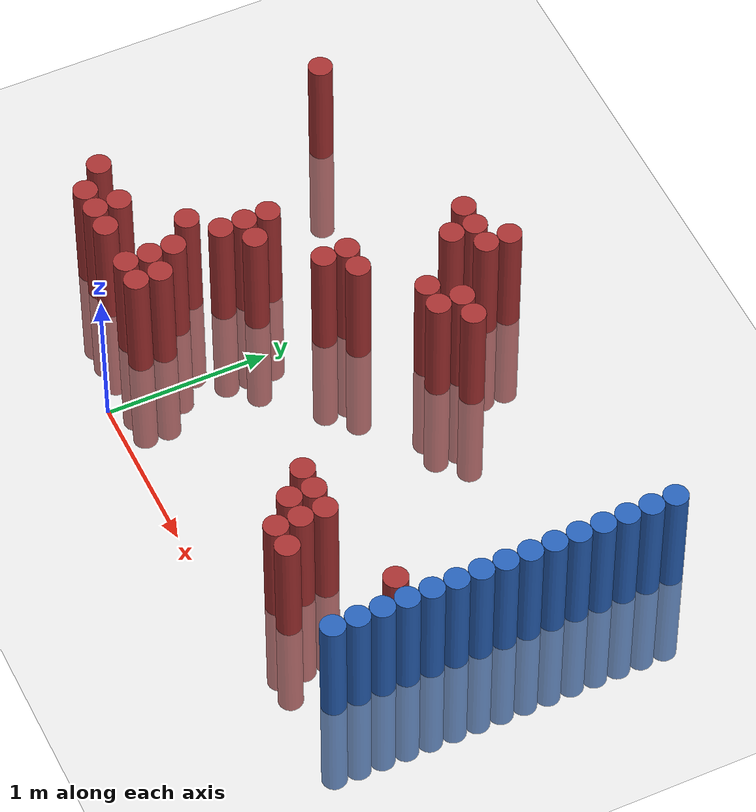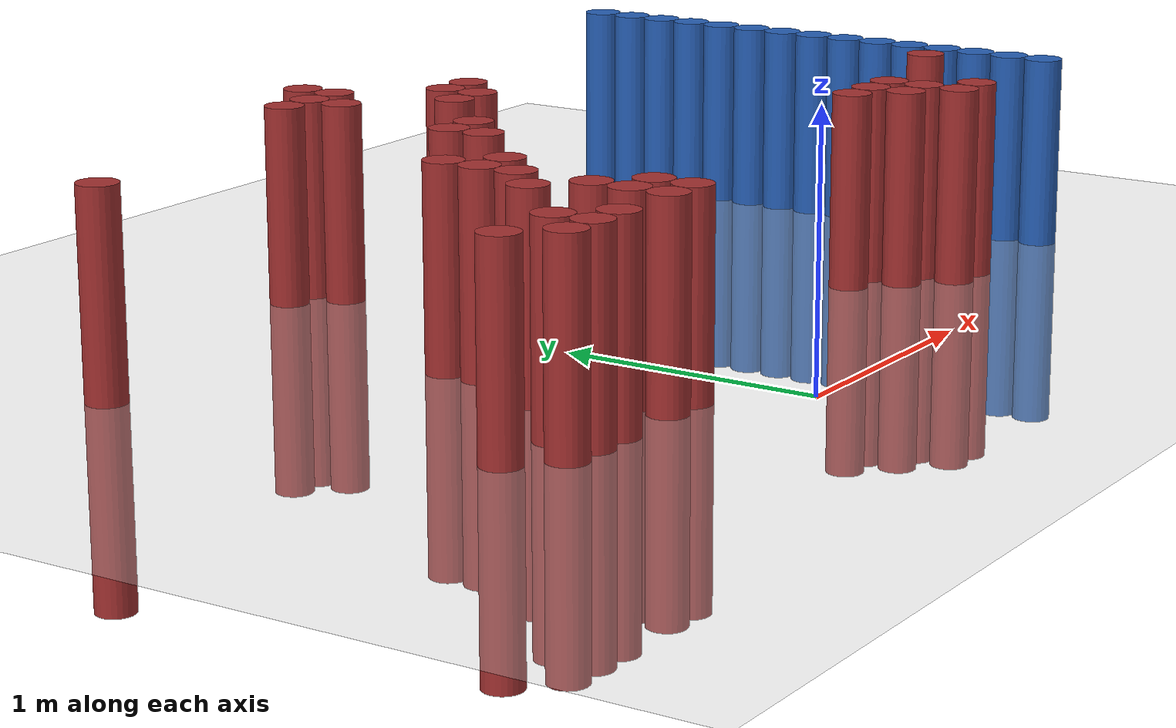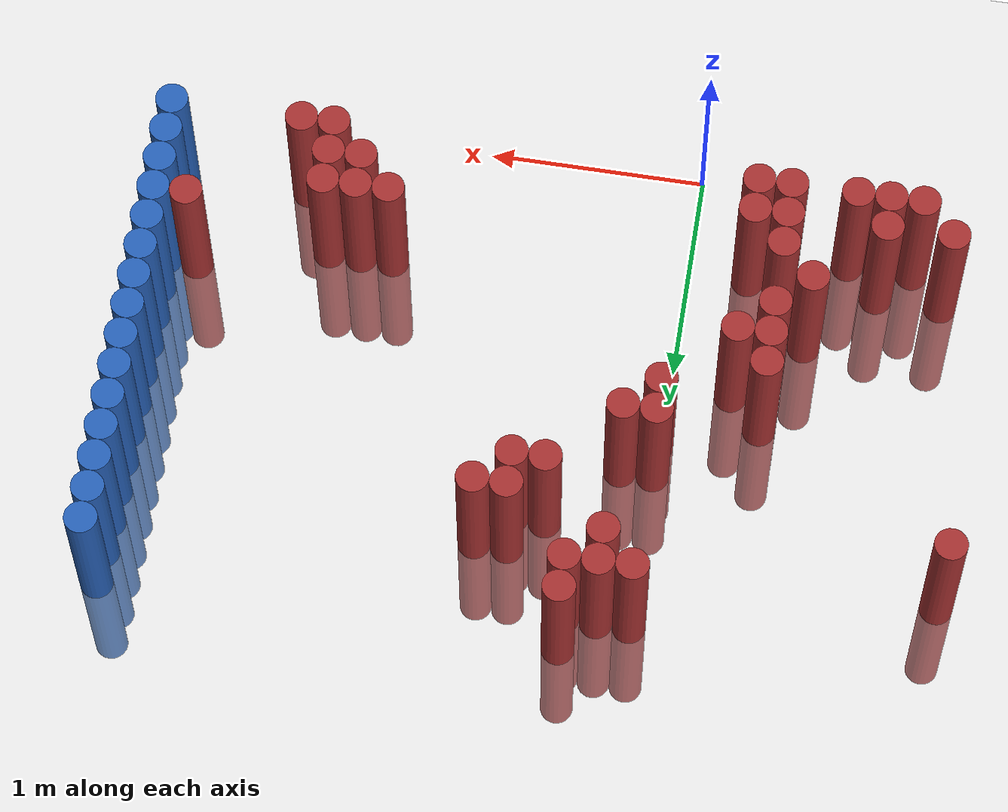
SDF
<sdf version="1.6">
 <world name="default">
  <model name="ground_plane">
   <static>1</static>
   <link name="link">
    <collision name="collision">
     <geometry><plane><normal>0 0 1</normal><size>100 100</size></plane></geometry>
     <surface><friction><ode><mu>100</mu><mu2>50</mu2></ode></friction></surface>
    </collision>
    <visual name="visual">
     <cast_shadows>0</cast_shadows>
     <geometry><plane><normal>0 0 1</normal><size>100 100</size></plane></geometry>
     <material>
      <script><uri>file://media/materials/scripts/gazebo.material</uri><name>Gazebo/Grey</name></script>
     </material>
    </visual>
   </link>
  </model>
  <model name="unit_cylinder_152">
   <static>1</static>
   <pose>-1.325000 1.975000 0.000000 0.000000 0.000000 0.000000</pose>
   <link name="link">
    <inertial>
     <mass>1</mass>
     <inertia><ixx>0.145833</ixx><ixy>0</ixy><ixz>0</ixz><iyy>0.145833</iyy><iyz>0</iyz><izz>0.125</izz></inertia>
    </inertial>
    <collision name="collision">
     <geometry><cylinder><radius>0.075000</radius><length>1.5</length></cylinder></geometry>
    </collision>
    <visual name="visual">
     <geometry><cylinder><radius>0.075000</radius><length>1.5</length></cylinder></geometry>
     <material>
      <ambient>0.648000 0.192000 0.192000 1</ambient>
      <diffuse>0.648000 0.192000 0.192000 1</diffuse>
     </material>
     <material>
      <script><name>Gazebo/Grey</name><uri>file://media/materials/scripts/gazebo.material</uri></script>
     </material>
    </visual>
   </link>
  </model>
  <model name="unit_cylinder_160">
   <static>1</static>
   <pose>-1.175000 0.475000 0.000000 0.000000 0.000000 0.000000</pose>
   <link name="link">
    <inertial>
     <mass>1</mass>
     <inertia><ixx>0.145833</ixx><ixy>0</ixy><ixz>0</ixz><iyy>0.145833</iyy><iyz>0</iyz><izz>0.125</izz></inertia>
    </inertial>
    <collision name="collision">
     <geometry><cylinder><radius>0.075000</radius><length>1.5</length></cylinder></geometry>
    </collision>
    <visual name="visual">
     <geometry><cylinder><radius>0.075000</radius><length>1.5</length></cylinder></geometry>
     <material>
      <ambient>0.648000 0.192000 0.192000 1</ambient>
      <diffuse>0.648000 0.192000 0.192000 1</diffuse>
     </material>
     <material>
      <script><name>Gazebo/Grey</name><uri>file://media/materials/scripts/gazebo.material</uri></script>
     </material>
    </visual>
   </link>
  </model>
  <model name="unit_cylinder_164">
   <static>1</static>
   <pose>-1.025000 0.325000 0.000000 0.000000 0.000000 0.000000</pose>
   <link name="link">
    <inertial>
     <mass>1</mass>
     <inertia><ixx>0.145833</ixx><ixy>0</ixy><ixz>0</ixz><iyy>0.145833</iyy><iyz>0</iyz><izz>0.125</izz></inertia>
    </inertial>
    <collision name="collision">
     <geometry><cylinder><radius>0.075000</radius><length>1.5</length></cylinder></geometry>
    </collision>
    <visual name="visual">
     <geometry><cylinder><radius>0.075000</radius><length>1.5</length></cylinder></geometry>
     <material>
      <ambient>0.648000 0.192000 0.192000 1</ambient>
      <diffuse>0.648000 0.192000 0.192000 1</diffuse>
     </material>
     <material>
      <script><name>Gazebo/Grey</name><uri>file://media/materials/scripts/gazebo.material</uri></script>
     </material>
    </visual>
   </link>
  </model>
  <model name="unit_cylinder_166">
   <static>1</static>
   <pose>-0.875000 0.325000 0.000000 0.000000 0.000000 0.000000</pose>
   <link name="link">
    <inertial>
     <mass>1</mass>
     <inertia><ixx>0.145833</ixx><ixy>0</ixy><ixz>0</ixz><iyy>0.145833</iyy><iyz>0</iyz><izz>0.125</izz></inertia>
    </inertial>
    <collision name="collision">
     <geometry><cylinder><radius>0.075000</radius><length>1.5</length></cylinder></geometry>
    </collision>
    <visual name="visual">
     <geometry><cylinder><radius>0.075000</radius><length>1.5</length></cylinder></geometry>
     <material>
      <ambient>0.648000 0.192000 0.192000 1</ambient>
      <diffuse>0.648000 0.192000 0.192000 1</diffuse>
     </material>
     <material>
      <script><name>Gazebo/Grey</name><uri>file://media/materials/scripts/gazebo.material</uri></script>
     </material>
    </visual>
   </link>
  </model>
  <model name="unit_cylinder_167">
   <static>1</static>
   <pose>-0.875000 0.475000 0.000000 0.000000 0.000000 0.000000</pose>
   <link name="link">
    <inertial>
     <mass>1</mass>
     <inertia><ixx>0.145833</ixx><ixy>0</ixy><ixz>0</ixz><iyy>0.145833</iyy><iyz>0</iyz><izz>0.125</izz></inertia>
    </inertial>
    <collision name="collision">
     <geometry><cylinder><radius>0.075000</radius><length>1.5</length></cylinder></geometry>
    </collision>
    <visual name="visual">
     <geometry><cylinder><radius>0.075000</radius><length>1.5</length></cylinder></geometry>
     <material>
      <ambient>0.648000 0.192000 0.192000 1</ambient>
      <diffuse>0.648000 0.192000 0.192000 1</diffuse>
     </material>
     <material>
      <script><name>Gazebo/Grey</name><uri>file://media/materials/scripts/gazebo.material</uri></script>
     </material>
    </visual>
   </link>
  </model>
  <model name="unit_cylinder_169">
   <static>1</static>
   <pose>-0.725000 0.325000 0.000000 0.000000 0.000000 0.000000</pose>
   <link name="link">
    <inertial>
     <mass>1</mass>
     <inertia><ixx>0.145833</ixx><ixy>0</ixy><ixz>0</ixz><iyy>0.145833</iyy><iyz>0</iyz><izz>0.125</izz></inertia>
    </inertial>
    <collision name="collision">
     <geometry><cylinder><radius>0.075000</radius><length>1.5</length></cylinder></geometry>
    </collision>
    <visual name="visual">
     <geometry><cylinder><radius>0.075000</radius><length>1.5</length></cylinder></geometry>
     <material>
      <ambient>0.648000 0.192000 0.192000 1</ambient>
      <diffuse>0.648000 0.192000 0.192000 1</diffuse>
     </material>
     <material>
      <script><name>Gazebo/Grey</name><uri>file://media/materials/scripts/gazebo.material</uri></script>
     </material>
    </visual>
   </link>
  </model>
  <model name="unit_cylinder_170">
   <static>1</static>
   <pose>-0.575000 0.775000 0.000000 0.000000 0.000000 0.000000</pose>
   <link name="link">
    <inertial>
     <mass>1</mass>
     <inertia><ixx>0.145833</ixx><ixy>0</ixy><ixz>0</ixz><iyy>0.145833</iyy><iyz>0</iyz><izz>0.125</izz></inertia>
    </inertial>
    <collision name="collision">
     <geometry><cylinder><radius>0.075000</radius><length>1.5</length></cylinder></geometry>
    </collision>
    <visual name="visual">
     <geometry><cylinder><radius>0.075000</radius><length>1.5</length></cylinder></geometry>
     <material>
      <ambient>0.648000 0.192000 0.192000 1</ambient>
      <diffuse>0.648000 0.192000 0.192000 1</diffuse>
     </material>
     <material>
      <script><name>Gazebo/Grey</name><uri>file://media/materials/scripts/gazebo.material</uri></script>
     </material>
    </visual>
   </link>
  </model>
  <model name="unit_cylinder_173">
   <static>1</static>
   <pose>-0.425000 0.325000 0.000000 0.000000 0.000000 0.000000</pose>
   <link name="link">
    <inertial>
     <mass>1</mass>
     <inertia><ixx>0.145833</ixx><ixy>0</ixy><ixz>0</ixz><iyy>0.145833</iyy><iyz>0</iyz><izz>0.125</izz></inertia>
    </inertial>
    <collision name="collision">
     <geometry><cylinder><radius>0.075000</radius><length>1.5</length></cylinder></geometry>
    </collision>
    <visual name="visual">
     <geometry><cylinder><radius>0.075000</radius><length>1.5</length></cylinder></geometry>
     <material>
      <ambient>0.648000 0.192000 0.192000 1</ambient>
      <diffuse>0.648000 0.192000 0.192000 1</diffuse>
     </material>
     <material>
      <script><name>Gazebo/Grey</name><uri>file://media/materials/scripts/gazebo.material</uri></script>
     </material>
    </visual>
   </link>
  </model>
  <model name="unit_cylinder_174">
   <static>1</static>
   <pose>-0.425000 0.475000 0.000000 0.000000 0.000000 0.000000</pose>
   <link name="link">
    <inertial>
     <mass>1</mass>
     <inertia><ixx>0.145833</ixx><ixy>0</ixy><ixz>0</ixz><iyy>0.145833</iyy><iyz>0</iyz><izz>0.125</izz></inertia>
    </inertial>
    <collision name="collision">
     <geometry><cylinder><radius>0.075000</radius><length>1.5</length></cylinder></geometry>
    </collision>
    <visual name="visual">
     <geometry><cylinder><radius>0.075000</radius><length>1.5</length></cylinder></geometry>
     <material>
      <ambient>0.648000 0.192000 0.192000 1</ambient>
      <diffuse>0.648000 0.192000 0.192000 1</diffuse>
     </material>
     <material>
      <script><name>Gazebo/Grey</name><uri>file://media/materials/scripts/gazebo.material</uri></script>
     </material>
    </visual>
   </link>
  </model>
  <model name="unit_cylinder_175">
   <static>1</static>
   <pose>-0.425000 0.625000 0.000000 0.000000 0.000000 0.000000</pose>
   <link name="link">
    <inertial>
     <mass>1</mass>
     <inertia><ixx>0.145833</ixx><ixy>0</ixy><ixz>0</ixz><iyy>0.145833</iyy><iyz>0</iyz><izz>0.125</izz></inertia>
    </inertial>
    <collision name="collision">
     <geometry><cylinder><radius>0.075000</radius><length>1.5</length></cylinder></geometry>
    </collision>
    <visual name="visual">
     <geometry><cylinder><radius>0.075000</radius><length>1.5</length></cylinder></geometry>
     <material>
      <ambient>0.648000 0.192000 0.192000 1</ambient>
      <diffuse>0.648000 0.192000 0.192000 1</diffuse>
     </material>
     <material>
      <script><name>Gazebo/Grey</name><uri>file://media/materials/scripts/gazebo.material</uri></script>
     </material>
    </visual>
   </link>
  </model>
  <model name="unit_cylinder_176">
   <static>1</static>
   <pose>-0.425000 0.925000 0.000000 0.000000 0.000000 0.000000</pose>
   <link name="link">
    <inertial>
     <mass>1</mass>
     <inertia><ixx>0.145833</ixx><ixy>0</ixy><ixz>0</ixz><iyy>0.145833</iyy><iyz>0</iyz><izz>0.125</izz></inertia>
    </inertial>
    <collision name="collision">
     <geometry><cylinder><radius>0.075000</radius><length>1.5</length></cylinder></geometry>
    </collision>
    <visual name="visual">
     <geometry><cylinder><radius>0.075000</radius><length>1.5</length></cylinder></geometry>
     <material>
      <ambient>0.648000 0.192000 0.192000 1</ambient>
      <diffuse>0.648000 0.192000 0.192000 1</diffuse>
     </material>
     <material>
      <script><name>Gazebo/Grey</name><uri>file://media/materials/scripts/gazebo.material</uri></script>
     </material>
    </visual>
   </link>
  </model>
  <model name="unit_cylinder_177">
   <static>1</static>
   <pose>-0.425000 1.075000 0.000000 0.000000 0.000000 0.000000</pose>
   <link name="link">
    <inertial>
     <mass>1</mass>
     <inertia><ixx>0.145833</ixx><ixy>0</ixy><ixz>0</ixz><iyy>0.145833</iyy><iyz>0</iyz><izz>0.125</izz></inertia>
    </inertial>
    <collision name="collision">
     <geometry><cylinder><radius>0.075000</radius><length>1.5</length></cylinder></geometry>
    </collision>
    <visual name="visual">
     <geometry><cylinder><radius>0.075000</radius><length>1.5</length></cylinder></geometry>
     <material>
      <ambient>0.648000 0.192000 0.192000 1</ambient>
      <diffuse>0.648000 0.192000 0.192000 1</diffuse>
     </material>
     <material>
      <script><name>Gazebo/Grey</name><uri>file://media/materials/scripts/gazebo.material</uri></script>
     </material>
    </visual>
   </link>
  </model>
  <model name="unit_cylinder_178">
   <static>1</static>
   <pose>-0.425000 1.225000 0.000000 0.000000 0.000000 0.000000</pose>
   <link name="link">
    <inertial>
     <mass>1</mass>
     <inertia><ixx>0.145833</ixx><ixy>0</ixy><ixz>0</ixz><iyy>0.145833</iyy><iyz>0</iyz><izz>0.125</izz></inertia>
    </inertial>
    <collision name="collision">
     <geometry><cylinder><radius>0.075000</radius><length>1.5</length></cylinder></geometry>
    </collision>
    <visual name="visual">
     <geometry><cylinder><radius>0.075000</radius><length>1.5</length></cylinder></geometry>
     <material>
      <ambient>0.648000 0.192000 0.192000 1</ambient>
      <diffuse>0.648000 0.192000 0.192000 1</diffuse>
     </material>
     <material>
      <script><name>Gazebo/Grey</name><uri>file://media/materials/scripts/gazebo.material</uri></script>
     </material>
    </visual>
   </link>
  </model>
  <model name="unit_cylinder_181">
   <static>1</static>
   <pose>-0.275000 0.325000 0.000000 0.000000 0.000000 0.000000</pose>
   <link name="link">
    <inertial>
     <mass>1</mass>
     <inertia><ixx>0.145833</ixx><ixy>0</ixy><ixz>0</ixz><iyy>0.145833</iyy><iyz>0</iyz><izz>0.125</izz></inertia>
    </inertial>
    <collision name="collision">
     <geometry><cylinder><radius>0.075000</radius><length>1.5</length></cylinder></geometry>
    </collision>
    <visual name="visual">
     <geometry><cylinder><radius>0.075000</radius><length>1.5</length></cylinder></geometry>
     <material>
      <ambient>0.648000 0.192000 0.192000 1</ambient>
      <diffuse>0.648000 0.192000 0.192000 1</diffuse>
     </material>
     <material>
      <script><name>Gazebo/Grey</name><uri>file://media/materials/scripts/gazebo.material</uri></script>
     </material>
    </visual>
   </link>
  </model>
  <model name="unit_cylinder_182">
   <static>1</static>
   <pose>-0.275000 0.475000 0.000000 0.000000 0.000000 0.000000</pose>
   <link name="link">
    <inertial>
     <mass>1</mass>
     <inertia><ixx>0.145833</ixx><ixy>0</ixy><ixz>0</ixz><iyy>0.145833</iyy><iyz>0</iyz><izz>0.125</izz></inertia>
    </inertial>
    <collision name="collision">
     <geometry><cylinder><radius>0.075000</radius><length>1.5</length></cylinder></geometry>
    </collision>
    <visual name="visual">
     <geometry><cylinder><radius>0.075000</radius><length>1.5</length></cylinder></geometry>
     <material>
      <ambient>0.648000 0.192000 0.192000 1</ambient>
      <diffuse>0.648000 0.192000 0.192000 1</diffuse>
     </material>
     <material>
      <script><name>Gazebo/Grey</name><uri>file://media/materials/scripts/gazebo.material</uri></script>
     </material>
    </visual>
   </link>
  </model>
  <model name="unit_cylinder_183">
   <static>1</static>
   <pose>-0.275000 1.075000 0.000000 0.000000 0.000000 0.000000</pose>
   <link name="link">
    <inertial>
     <mass>1</mass>
     <inertia><ixx>0.145833</ixx><ixy>0</ixy><ixz>0</ixz><iyy>0.145833</iyy><iyz>0</iyz><izz>0.125</izz></inertia>
    </inertial>
    <collision name="collision">
     <geometry><cylinder><radius>0.075000</radius><length>1.5</length></cylinder></geometry>
    </collision>
    <visual name="visual">
     <geometry><cylinder><radius>0.075000</radius><length>1.5</length></cylinder></geometry>
     <material>
      <ambient>0.648000 0.192000 0.192000 1</ambient>
      <diffuse>0.648000 0.192000 0.192000 1</diffuse>
     </material>
     <material>
      <script><name>Gazebo/Grey</name><uri>file://media/materials/scripts/gazebo.material</uri></script>
     </material>
    </visual>
   </link>
  </model>
  <model name="unit_cylinder_184">
   <static>1</static>
   <pose>0.025000 1.375000 0.000000 0.000000 0.000000 0.000000</pose>
   <link name="link">
    <inertial>
     <mass>1</mass>
     <inertia><ixx>0.145833</ixx><ixy>0</ixy><ixz>0</ixz><iyy>0.145833</iyy><iyz>0</iyz><izz>0.125</izz></inertia>
    </inertial>
    <collision name="collision">
     <geometry><cylinder><radius>0.075000</radius><length>1.5</length></cylinder></geometry>
    </collision>
    <visual name="visual">
     <geometry><cylinder><radius>0.075000</radius><length>1.5</length></cylinder></geometry>
     <material>
      <ambient>0.648000 0.192000 0.192000 1</ambient>
      <diffuse>0.648000 0.192000 0.192000 1</diffuse>
     </material>
     <material>
      <script><name>Gazebo/Grey</name><uri>file://media/materials/scripts/gazebo.material</uri></script>
     </material>
    </visual>
   </link>
  </model>
  <model name="unit_cylinder_185">
   <static>1</static>
   <pose>0.025000 1.525000 0.000000 0.000000 0.000000 0.000000</pose>
   <link name="link">
    <inertial>
     <mass>1</mass>
     <inertia><ixx>0.145833</ixx><ixy>0</ixy><ixz>0</ixz><iyy>0.145833</iyy><iyz>0</iyz><izz>0.125</izz></inertia>
    </inertial>
    <collision name="collision">
     <geometry><cylinder><radius>0.075000</radius><length>1.5</length></cylinder></geometry>
    </collision>
    <visual name="visual">
     <geometry><cylinder><radius>0.075000</radius><length>1.5</length></cylinder></geometry>
     <material>
      <ambient>0.648000 0.192000 0.192000 1</ambient>
      <diffuse>0.648000 0.192000 0.192000 1</diffuse>
     </material>
     <material>
      <script><name>Gazebo/Grey</name><uri>file://media/materials/scripts/gazebo.material</uri></script>
     </material>
    </visual>
   </link>
  </model>
  <model name="unit_cylinder_186">
   <static>1</static>
   <pose>0.025000 2.275000 0.000000 0.000000 0.000000 0.000000</pose>
   <link name="link">
    <inertial>
     <mass>1</mass>
     <inertia><ixx>0.145833</ixx><ixy>0</ixy><ixz>0</ixz><iyy>0.145833</iyy><iyz>0</iyz><izz>0.125</izz></inertia>
    </inertial>
    <collision name="collision">
     <geometry><cylinder><radius>0.075000</radius><length>1.5</length></cylinder></geometry>
    </collision>
    <visual name="visual">
     <geometry><cylinder><radius>0.075000</radius><length>1.5</length></cylinder></geometry>
     <material>
      <ambient>0.648000 0.192000 0.192000 1</ambient>
      <diffuse>0.648000 0.192000 0.192000 1</diffuse>
     </material>
     <material>
      <script><name>Gazebo/Grey</name><uri>file://media/materials/scripts/gazebo.material</uri></script>
     </material>
    </visual>
   </link>
  </model>
  <model name="unit_cylinder_187">
   <static>1</static>
   <pose>0.175000 1.525000 0.000000 0.000000 0.000000 0.000000</pose>
   <link name="link">
    <inertial>
     <mass>1</mass>
     <inertia><ixx>0.145833</ixx><ixy>0</ixy><ixz>0</ixz><iyy>0.145833</iyy><iyz>0</iyz><izz>0.125</izz></inertia>
    </inertial>
    <collision name="collision">
     <geometry><cylinder><radius>0.075000</radius><length>1.5</length></cylinder></geometry>
    </collision>
    <visual name="visual">
     <geometry><cylinder><radius>0.075000</radius><length>1.5</length></cylinder></geometry>
     <material>
      <ambient>0.648000 0.192000 0.192000 1</ambient>
      <diffuse>0.648000 0.192000 0.192000 1</diffuse>
     </material>
     <material>
      <script><name>Gazebo/Grey</name><uri>file://media/materials/scripts/gazebo.material</uri></script>
     </material>
    </visual>
   </link>
  </model>
  <model name="unit_cylinder_188">
   <static>1</static>
   <pose>0.175000 2.125000 0.000000 0.000000 0.000000 0.000000</pose>
   <link name="link">
    <inertial>
     <mass>1</mass>
     <inertia><ixx>0.145833</ixx><ixy>0</ixy><ixz>0</ixz><iyy>0.145833</iyy><iyz>0</iyz><izz>0.125</izz></inertia>
    </inertial>
    <collision name="collision">
     <geometry><cylinder><radius>0.075000</radius><length>1.5</length></cylinder></geometry>
    </collision>
    <visual name="visual">
     <geometry><cylinder><radius>0.075000</radius><length>1.5</length></cylinder></geometry>
     <material>
      <ambient>0.648000 0.192000 0.192000 1</ambient>
      <diffuse>0.648000 0.192000 0.192000 1</diffuse>
     </material>
     <material>
      <script><name>Gazebo/Grey</name><uri>file://media/materials/scripts/gazebo.material</uri></script>
     </material>
    </visual>
   </link>
  </model>
  <model name="unit_cylinder_189">
   <static>1</static>
   <pose>0.175000 2.275000 0.000000 0.000000 0.000000 0.000000</pose>
   <link name="link">
    <inertial>
     <mass>1</mass>
     <inertia><ixx>0.145833</ixx><ixy>0</ixy><ixz>0</ixz><iyy>0.145833</iyy><iyz>0</iyz><izz>0.125</izz></inertia>
    </inertial>
    <collision name="collision">
     <geometry><cylinder><radius>0.075000</radius><length>1.5</length></cylinder></geometry>
    </collision>
    <visual name="visual">
     <geometry><cylinder><radius>0.075000</radius><length>1.5</length></cylinder></geometry>
     <material>
      <ambient>0.648000 0.192000 0.192000 1</ambient>
      <diffuse>0.648000 0.192000 0.192000 1</diffuse>
     </material>
     <material>
      <script><name>Gazebo/Grey</name><uri>file://media/materials/scripts/gazebo.material</uri></script>
     </material>
    </visual>
   </link>
  </model>
  <model name="unit_cylinder_190">
   <static>1</static>
   <pose>0.325000 2.275000 0.000000 0.000000 0.000000 0.000000</pose>
   <link name="link">
    <inertial>
     <mass>1</mass>
     <inertia><ixx>0.145833</ixx><ixy>0</ixy><ixz>0</ixz><iyy>0.145833</iyy><iyz>0</iyz><izz>0.125</izz></inertia>
    </inertial>
    <collision name="collision">
     <geometry><cylinder><radius>0.075000</radius><length>1.5</length></cylinder></geometry>
    </collision>
    <visual name="visual">
     <geometry><cylinder><radius>0.075000</radius><length>1.5</length></cylinder></geometry>
     <material>
      <ambient>0.648000 0.192000 0.192000 1</ambient>
      <diffuse>0.648000 0.192000 0.192000 1</diffuse>
     </material>
     <material>
      <script><name>Gazebo/Grey</name><uri>file://media/materials/scripts/gazebo.material</uri></script>
     </material>
    </visual>
   </link>
  </model>
  <model name="unit_cylinder_191">
   <static>1</static>
   <pose>0.325000 2.425000 0.000000 0.000000 0.000000 0.000000</pose>
   <link name="link">
    <inertial>
     <mass>1</mass>
     <inertia><ixx>0.145833</ixx><ixy>0</ixy><ixz>0</ixz><iyy>0.145833</iyy><iyz>0</iyz><izz>0.125</izz></inertia>
    </inertial>
    <collision name="collision">
     <geometry><cylinder><radius>0.075000</radius><length>1.5</length></cylinder></geometry>
    </collision>
    <visual name="visual">
     <geometry><cylinder><radius>0.075000</radius><length>1.5</length></cylinder></geometry>
     <material>
      <ambient>0.648000 0.192000 0.192000 1</ambient>
      <diffuse>0.648000 0.192000 0.192000 1</diffuse>
     </material>
     <material>
      <script><name>Gazebo/Grey</name><uri>file://media/materials/scripts/gazebo.material</uri></script>
     </material>
    </visual>
   </link>
  </model>
  <model name="unit_cylinder_192">
   <static>1</static>
   <pose>0.475000 1.825000 0.000000 0.000000 0.000000 0.000000</pose>
   <link name="link">
    <inertial>
     <mass>1</mass>
     <inertia><ixx>0.145833</ixx><ixy>0</ixy><ixz>0</ixz><iyy>0.145833</iyy><iyz>0</iyz><izz>0.125</izz></inertia>
    </inertial>
    <collision name="collision">
     <geometry><cylinder><radius>0.075000</radius><length>1.5</length></cylinder></geometry>
    </collision>
    <visual name="visual">
     <geometry><cylinder><radius>0.075000</radius><length>1.5</length></cylinder></geometry>
     <material>
      <ambient>0.648000 0.192000 0.192000 1</ambient>
      <diffuse>0.648000 0.192000 0.192000 1</diffuse>
     </material>
     <material>
      <script><name>Gazebo/Grey</name><uri>file://media/materials/scripts/gazebo.material</uri></script>
     </material>
    </visual>
   </link>
  </model>
  <model name="unit_cylinder_193">
   <static>1</static>
   <pose>0.625000 1.825000 0.000000 0.000000 0.000000 0.000000</pose>
   <link name="link">
    <inertial>
     <mass>1</mass>
     <inertia><ixx>0.145833</ixx><ixy>0</ixy><ixz>0</ixz><iyy>0.145833</iyy><iyz>0</iyz><izz>0.125</izz></inertia>
    </inertial>
    <collision name="collision">
     <geometry><cylinder><radius>0.075000</radius><length>1.5</length></cylinder></geometry>
    </collision>
    <visual name="visual">
     <geometry><cylinder><radius>0.075000</radius><length>1.5</length></cylinder></geometry>
     <material>
      <ambient>0.648000 0.192000 0.192000 1</ambient>
      <diffuse>0.648000 0.192000 0.192000 1</diffuse>
     </material>
     <material>
      <script><name>Gazebo/Grey</name><uri>file://media/materials/scripts/gazebo.material</uri></script>
     </material>
    </visual>
   </link>
  </model>
  <model name="unit_cylinder_194">
   <static>1</static>
   <pose>0.625000 1.975000 0.000000 0.000000 0.000000 0.000000</pose>
   <link name="link">
    <inertial>
     <mass>1</mass>
     <inertia><ixx>0.145833</ixx><ixy>0</ixy><ixz>0</ixz><iyy>0.145833</iyy><iyz>0</iyz><izz>0.125</izz></inertia>
    </inertial>
    <collision name="collision">
     <geometry><cylinder><radius>0.075000</radius><length>1.5</length></cylinder></geometry>
    </collision>
    <visual name="visual">
     <geometry><cylinder><radius>0.075000</radius><length>1.5</length></cylinder></geometry>
     <material>
      <ambient>0.648000 0.192000 0.192000 1</ambient>
      <diffuse>0.648000 0.192000 0.192000 1</diffuse>
     </material>
     <material>
      <script><name>Gazebo/Grey</name><uri>file://media/materials/scripts/gazebo.material</uri></script>
     </material>
    </visual>
   </link>
  </model>
  <model name="unit_cylinder_198">
   <static>1</static>
   <pose>0.775000 1.975000 0.000000 0.000000 0.000000 0.000000</pose>
   <link name="link">
    <inertial>
     <mass>1</mass>
     <inertia><ixx>0.145833</ixx><ixy>0</ixy><ixz>0</ixz><iyy>0.145833</iyy><iyz>0</iyz><izz>0.125</izz></inertia>
    </inertial>
    <collision name="collision">
     <geometry><cylinder><radius>0.075000</radius><length>1.5</length></cylinder></geometry>
    </collision>
    <visual name="visual">
     <geometry><cylinder><radius>0.075000</radius><length>1.5</length></cylinder></geometry>
     <material>
      <ambient>0.648000 0.192000 0.192000 1</ambient>
      <diffuse>0.648000 0.192000 0.192000 1</diffuse>
     </material>
     <material>
      <script><name>Gazebo/Grey</name><uri>file://media/materials/scripts/gazebo.material</uri></script>
     </material>
    </visual>
   </link>
  </model>
  <model name="unit_cylinder_203">
   <static>1</static>
   <pose>1.375000 0.625000 0.000000 0.000000 0.000000 0.000000</pose>
   <link name="link">
    <inertial>
     <mass>1</mass>
     <inertia><ixx>0.145833</ixx><ixy>0</ixy><ixz>0</ixz><iyy>0.145833</iyy><iyz>0</iyz><izz>0.125</izz></inertia>
    </inertial>
    <collision name="collision">
     <geometry><cylinder><radius>0.075000</radius><length>1.5</length></cylinder></geometry>
    </collision>
    <visual name="visual">
     <geometry><cylinder><radius>0.075000</radius><length>1.5</length></cylinder></geometry>
     <material>
      <ambient>0.648000 0.192000 0.192000 1</ambient>
      <diffuse>0.648000 0.192000 0.192000 1</diffuse>
     </material>
     <material>
      <script><name>Gazebo/Grey</name><uri>file://media/materials/scripts/gazebo.material</uri></script>
     </material>
    </visual>
   </link>
  </model>
  <model name="unit_cylinder_204">
   <static>1</static>
   <pose>1.525000 0.475000 0.000000 0.000000 0.000000 0.000000</pose>
   <link name="link">
    <inertial>
     <mass>1</mass>
     <inertia><ixx>0.145833</ixx><ixy>0</ixy><ixz>0</ixz><iyy>0.145833</iyy><iyz>0</iyz><izz>0.125</izz></inertia>
    </inertial>
    <collision name="collision">
     <geometry><cylinder><radius>0.075000</radius><length>1.5</length></cylinder></geometry>
    </collision>
    <visual name="visual">
     <geometry><cylinder><radius>0.075000</radius><length>1.5</length></cylinder></geometry>
     <material>
      <ambient>0.648000 0.192000 0.192000 1</ambient>
      <diffuse>0.648000 0.192000 0.192000 1</diffuse>
     </material>
     <material>
      <script><name>Gazebo/Grey</name><uri>file://media/materials/scripts/gazebo.material</uri></script>
     </material>
    </visual>
   </link>
  </model>
  <model name="unit_cylinder_205">
   <static>1</static>
   <pose>1.525000 0.625000 0.000000 0.000000 0.000000 0.000000</pose>
   <link name="link">
    <inertial>
     <mass>1</mass>
     <inertia><ixx>0.145833</ixx><ixy>0</ixy><ixz>0</ixz><iyy>0.145833</iyy><iyz>0</iyz><izz>0.125</izz></inertia>
    </inertial>
    <collision name="collision">
     <geometry><cylinder><radius>0.075000</radius><length>1.5</length></cylinder></geometry>
    </collision>
    <visual name="visual">
     <geometry><cylinder><radius>0.075000</radius><length>1.5</length></cylinder></geometry>
     <material>
      <ambient>0.648000 0.192000 0.192000 1</ambient>
      <diffuse>0.648000 0.192000 0.192000 1</diffuse>
     </material>
     <material>
      <script><name>Gazebo/Grey</name><uri>file://media/materials/scripts/gazebo.material</uri></script>
     </material>
    </visual>
   </link>
  </model>
  <model name="unit_cylinder_207">
   <static>1</static>
   <pose>1.675000 0.325000 0.000000 0.000000 0.000000 0.000000</pose>
   <link name="link">
    <inertial>
     <mass>1</mass>
     <inertia><ixx>0.145833</ixx><ixy>0</ixy><ixz>0</ixz><iyy>0.145833</iyy><iyz>0</iyz><izz>0.125</izz></inertia>
    </inertial>
    <collision name="collision">
     <geometry><cylinder><radius>0.075000</radius><length>1.5</length></cylinder></geometry>
    </collision>
    <visual name="visual">
     <geometry><cylinder><radius>0.075000</radius><length>1.5</length></cylinder></geometry>
     <material>
      <ambient>0.648000 0.192000 0.192000 1</ambient>
      <diffuse>0.648000 0.192000 0.192000 1</diffuse>
     </material>
     <material>
      <script><name>Gazebo/Grey</name><uri>file://media/materials/scripts/gazebo.material</uri></script>
     </material>
    </visual>
   </link>
  </model>
  <model name="unit_cylinder_208">
   <static>1</static>
   <pose>1.675000 0.475000 0.000000 0.000000 0.000000 0.000000</pose>
   <link name="link">
    <inertial>
     <mass>1</mass>
     <inertia><ixx>0.145833</ixx><ixy>0</ixy><ixz>0</ixz><iyy>0.145833</iyy><iyz>0</iyz><izz>0.125</izz></inertia>
    </inertial>
    <collision name="collision">
     <geometry><cylinder><radius>0.075000</radius><length>1.5</length></cylinder></geometry>
    </collision>
    <visual name="visual">
     <geometry><cylinder><radius>0.075000</radius><length>1.5</length></cylinder></geometry>
     <material>
      <ambient>0.648000 0.192000 0.192000 1</ambient>
      <diffuse>0.648000 0.192000 0.192000 1</diffuse>
     </material>
     <material>
      <script><name>Gazebo/Grey</name><uri>file://media/materials/scripts/gazebo.material</uri></script>
     </material>
    </visual>
   </link>
  </model>
  <model name="unit_cylinder_209">
   <static>1</static>
   <pose>1.675000 0.625000 0.000000 0.000000 0.000000 0.000000</pose>
   <link name="link">
    <inertial>
     <mass>1</mass>
     <inertia><ixx>0.145833</ixx><ixy>0</ixy><ixz>0</ixz><iyy>0.145833</iyy><iyz>0</iyz><izz>0.125</izz></inertia>
    </inertial>
    <collision name="collision">
     <geometry><cylinder><radius>0.075000</radius><length>1.5</length></cylinder></geometry>
    </collision>
    <visual name="visual">
     <geometry><cylinder><radius>0.075000</radius><length>1.5</length></cylinder></geometry>
     <material>
      <ambient>0.648000 0.192000 0.192000 1</ambient>
      <diffuse>0.648000 0.192000 0.192000 1</diffuse>
     </material>
     <material>
      <script><name>Gazebo/Grey</name><uri>file://media/materials/scripts/gazebo.material</uri></script>
     </material>
    </visual>
   </link>
  </model>
  <model name="unit_cylinder_211">
   <static>1</static>
   <pose>1.825000 0.325000 0.000000 0.000000 0.000000 0.000000</pose>
   <link name="link">
    <inertial>
     <mass>1</mass>
     <inertia><ixx>0.145833</ixx><ixy>0</ixy><ixz>0</ixz><iyy>0.145833</iyy><iyz>0</iyz><izz>0.125</izz></inertia>
    </inertial>
    <collision name="collision">
     <geometry><cylinder><radius>0.075000</radius><length>1.5</length></cylinder></geometry>
    </collision>
    <visual name="visual">
     <geometry><cylinder><radius>0.075000</radius><length>1.5</length></cylinder></geometry>
     <material>
      <ambient>0.648000 0.192000 0.192000 1</ambient>
      <diffuse>0.648000 0.192000 0.192000 1</diffuse>
     </material>
     <material>
      <script><name>Gazebo/Grey</name><uri>file://media/materials/scripts/gazebo.material</uri></script>
     </material>
    </visual>
   </link>
  </model>
  <model name="unit_cylinder_217">
   <static>1</static>
   <pose>2.275000 0.775000 0.000000 0.000000 0.000000 0.000000</pose>
   <link name="link">
    <inertial>
     <mass>1</mass>
     <inertia><ixx>0.145833</ixx><ixy>0</ixy><ixz>0</ixz><iyy>0.145833</iyy><iyz>0</iyz><izz>0.125</izz></inertia>
    </inertial>
    <collision name="collision">
     <geometry><cylinder><radius>0.075000</radius><length>1.5</length></cylinder></geometry>
    </collision>
    <visual name="visual">
     <geometry><cylinder><radius>0.075000</radius><length>1.5</length></cylinder></geometry>
     <material>
      <ambient>0.648000 0.192000 0.192000 1</ambient>
      <diffuse>0.648000 0.192000 0.192000 1</diffuse>
     </material>
     <material>
      <script><name>Gazebo/Grey</name><uri>file://media/materials/scripts/gazebo.material</uri></script>
     </material>
    </visual>
   </link>
  </model>
  <model name="unit_cylinder_230">
   <static>1</static>
   <pose>2.425000 0.325000 0.000000 0.000000 0.000000 0.000000</pose>
   <link name="link">
    <inertial>
     <mass>1</mass>
     <inertia><ixx>0.145833</ixx><ixy>0</ixy><ixz>0</ixz><iyy>0.145833</iyy><iyz>0</iyz><izz>0.125</izz></inertia>
    </inertial>
    <collision name="collision">
     <geometry><cylinder><radius>0.075000</radius><length>1.5</length></cylinder></geometry>
    </collision>
    <visual name="visual">
     <geometry><cylinder><radius>0.075000</radius><length>1.5</length></cylinder></geometry>
     <material>
      <ambient>0.152000 0.379000 0.720000 1</ambient>
      <diffuse>0.152000 0.379000 0.720000 1</diffuse>
     </material>
     <material>
      <script><name>Gazebo/Grey</name><uri>file://media/materials/scripts/gazebo.material</uri></script>
     </material>
    </visual>
   </link>
  </model>
  <model name="unit_cylinder_231">
   <static>1</static>
   <pose>2.425000 0.475000 0.000000 0.000000 0.000000 0.000000</pose>
   <link name="link">
    <inertial>
     <mass>1</mass>
     <inertia><ixx>0.145833</ixx><ixy>0</ixy><ixz>0</ixz><iyy>0.145833</iyy><iyz>0</iyz><izz>0.125</izz></inertia>
    </inertial>
    <collision name="collision">
     <geometry><cylinder><radius>0.075000</radius><length>1.5</length></cylinder></geometry>
    </collision>
    <visual name="visual">
     <geometry><cylinder><radius>0.075000</radius><length>1.5</length></cylinder></geometry>
     <material>
      <ambient>0.152000 0.379000 0.720000 1</ambient>
      <diffuse>0.152000 0.379000 0.720000 1</diffuse>
     </material>
     <material>
      <script><name>Gazebo/Grey</name><uri>file://media/materials/scripts/gazebo.material</uri></script>
     </material>
    </visual>
   </link>
  </model>
  <model name="unit_cylinder_232">
   <static>1</static>
   <pose>2.425000 0.625000 0.000000 0.000000 0.000000 0.000000</pose>
   <link name="link">
    <inertial>
     <mass>1</mass>
     <inertia><ixx>0.145833</ixx><ixy>0</ixy><ixz>0</ixz><iyy>0.145833</iyy><iyz>0</iyz><izz>0.125</izz></inertia>
    </inertial>
    <collision name="collision">
     <geometry><cylinder><radius>0.075000</radius><length>1.5</length></cylinder></geometry>
    </collision>
    <visual name="visual">
     <geometry><cylinder><radius>0.075000</radius><length>1.5</length></cylinder></geometry>
     <material>
      <ambient>0.152000 0.379000 0.720000 1</ambient>
      <diffuse>0.152000 0.379000 0.720000 1</diffuse>
     </material>
     <material>
      <script><name>Gazebo/Grey</name><uri>file://media/materials/scripts/gazebo.material</uri></script>
     </material>
    </visual>
   </link>
  </model>
  <model name="unit_cylinder_233">
   <static>1</static>
   <pose>2.425000 0.775000 0.000000 0.000000 0.000000 0.000000</pose>
   <link name="link">
    <inertial>
     <mass>1</mass>
     <inertia><ixx>0.145833</ixx><ixy>0</ixy><ixz>0</ixz><iyy>0.145833</iyy><iyz>0</iyz><izz>0.125</izz></inertia>
    </inertial>
    <collision name="collision">
     <geometry><cylinder><radius>0.075000</radius><length>1.5</length></cylinder></geometry>
    </collision>
    <visual name="visual">
     <geometry><cylinder><radius>0.075000</radius><length>1.5</length></cylinder></geometry>
     <material>
      <ambient>0.152000 0.379000 0.720000 1</ambient>
      <diffuse>0.152000 0.379000 0.720000 1</diffuse>
     </material>
     <material>
      <script><name>Gazebo/Grey</name><uri>file://media/materials/scripts/gazebo.material</uri></script>
     </material>
    </visual>
   </link>
  </model>
  <model name="unit_cylinder_234">
   <static>1</static>
   <pose>2.425000 0.925000 0.000000 0.000000 0.000000 0.000000</pose>
   <link name="link">
    <inertial>
     <mass>1</mass>
     <inertia><ixx>0.145833</ixx><ixy>0</ixy><ixz>0</ixz><iyy>0.145833</iyy><iyz>0</iyz><izz>0.125</izz></inertia>
    </inertial>
    <collision name="collision">
     <geometry><cylinder><radius>0.075000</radius><length>1.5</length></cylinder></geometry>
    </collision>
    <visual name="visual">
     <geometry><cylinder><radius>0.075000</radius><length>1.5</length></cylinder></geometry>
     <material>
      <ambient>0.152000 0.379000 0.720000 1</ambient>
      <diffuse>0.152000 0.379000 0.720000 1</diffuse>
     </material>
     <material>
      <script><name>Gazebo/Grey</name><uri>file://media/materials/scripts/gazebo.material</uri></script>
     </material>
    </visual>
   </link>
  </model>
  <model name="unit_cylinder_235">
   <static>1</static>
   <pose>2.425000 1.075000 0.000000 0.000000 0.000000 0.000000</pose>
   <link name="link">
    <inertial>
     <mass>1</mass>
     <inertia><ixx>0.145833</ixx><ixy>0</ixy><ixz>0</ixz><iyy>0.145833</iyy><iyz>0</iyz><izz>0.125</izz></inertia>
    </inertial>
    <collision name="collision">
     <geometry><cylinder><radius>0.075000</radius><length>1.5</length></cylinder></geometry>
    </collision>
    <visual name="visual">
     <geometry><cylinder><radius>0.075000</radius><length>1.5</length></cylinder></geometry>
     <material>
      <ambient>0.152000 0.379000 0.720000 1</ambient>
      <diffuse>0.152000 0.379000 0.720000 1</diffuse>
     </material>
     <material>
      <script><name>Gazebo/Grey</name><uri>file://media/materials/scripts/gazebo.material</uri></script>
     </material>
    </visual>
   </link>
  </model>
  <model name="unit_cylinder_236">
   <static>1</static>
   <pose>2.425000 1.225000 0.000000 0.000000 0.000000 0.000000</pose>
   <link name="link">
    <inertial>
     <mass>1</mass>
     <inertia><ixx>0.145833</ixx><ixy>0</ixy><ixz>0</ixz><iyy>0.145833</iyy><iyz>0</iyz><izz>0.125</izz></inertia>
    </inertial>
    <collision name="collision">
     <geometry><cylinder><radius>0.075000</radius><length>1.5</length></cylinder></geometry>
    </collision>
    <visual name="visual">
     <geometry><cylinder><radius>0.075000</radius><length>1.5</length></cylinder></geometry>
     <material>
      <ambient>0.152000 0.379000 0.720000 1</ambient>
      <diffuse>0.152000 0.379000 0.720000 1</diffuse>
     </material>
     <material>
      <script><name>Gazebo/Grey</name><uri>file://media/materials/scripts/gazebo.material</uri></script>
     </material>
    </visual>
   </link>
  </model>
  <model name="unit_cylinder_237">
   <static>1</static>
   <pose>2.425000 1.375000 0.000000 0.000000 0.000000 0.000000</pose>
   <link name="link">
    <inertial>
     <mass>1</mass>
     <inertia><ixx>0.145833</ixx><ixy>0</ixy><ixz>0</ixz><iyy>0.145833</iyy><iyz>0</iyz><izz>0.125</izz></inertia>
    </inertial>
    <collision name="collision">
     <geometry><cylinder><radius>0.075000</radius><length>1.5</length></cylinder></geometry>
    </collision>
    <visual name="visual">
     <geometry><cylinder><radius>0.075000</radius><length>1.5</length></cylinder></geometry>
     <material>
      <ambient>0.152000 0.379000 0.720000 1</ambient>
      <diffuse>0.152000 0.379000 0.720000 1</diffuse>
     </material>
     <material>
      <script><name>Gazebo/Grey</name><uri>file://media/materials/scripts/gazebo.material</uri></script>
     </material>
    </visual>
   </link>
  </model>
  <model name="unit_cylinder_238">
   <static>1</static>
   <pose>2.425000 1.525000 0.000000 0.000000 0.000000 0.000000</pose>
   <link name="link">
    <inertial>
     <mass>1</mass>
     <inertia><ixx>0.145833</ixx><ixy>0</ixy><ixz>0</ixz><iyy>0.145833</iyy><iyz>0</iyz><izz>0.125</izz></inertia>
    </inertial>
    <collision name="collision">
     <geometry><cylinder><radius>0.075000</radius><length>1.5</length></cylinder></geometry>
    </collision>
    <visual name="visual">
     <geometry><cylinder><radius>0.075000</radius><length>1.5</length></cylinder></geometry>
     <material>
      <ambient>0.152000 0.379000 0.720000 1</ambient>
      <diffuse>0.152000 0.379000 0.720000 1</diffuse>
     </material>
     <material>
      <script><name>Gazebo/Grey</name><uri>file://media/materials/scripts/gazebo.material</uri></script>
     </material>
    </visual>
   </link>
  </model>
  <model name="unit_cylinder_239">
   <static>1</static>
   <pose>2.425000 1.675000 0.000000 0.000000 0.000000 0.000000</pose>
   <link name="link">
    <inertial>
     <mass>1</mass>
     <inertia><ixx>0.145833</ixx><ixy>0</ixy><ixz>0</ixz><iyy>0.145833</iyy><iyz>0</iyz><izz>0.125</izz></inertia>
    </inertial>
    <collision name="collision">
     <geometry><cylinder><radius>0.075000</radius><length>1.5</length></cylinder></geometry>
    </collision>
    <visual name="visual">
     <geometry><cylinder><radius>0.075000</radius><length>1.5</length></cylinder></geometry>
     <material>
      <ambient>0.152000 0.379000 0.720000 1</ambient>
      <diffuse>0.152000 0.379000 0.720000 1</diffuse>
     </material>
     <material>
      <script><name>Gazebo/Grey</name><uri>file://media/materials/scripts/gazebo.material</uri></script>
     </material>
    </visual>
   </link>
  </model>
  <model name="unit_cylinder_240">
   <static>1</static>
   <pose>2.425000 1.825000 0.000000 0.000000 0.000000 0.000000</pose>
   <link name="link">
    <inertial>
     <mass>1</mass>
     <inertia><ixx>0.145833</ixx><ixy>0</ixy><ixz>0</ixz><iyy>0.145833</iyy><iyz>0</iyz><izz>0.125</izz></inertia>
    </inertial>
    <collision name="collision">
     <geometry><cylinder><radius>0.075000</radius><length>1.5</length></cylinder></geometry>
    </collision>
    <visual name="visual">
     <geometry><cylinder><radius>0.075000</radius><length>1.5</length></cylinder></geometry>
     <material>
      <ambient>0.152000 0.379000 0.720000 1</ambient>
      <diffuse>0.152000 0.379000 0.720000 1</diffuse>
     </material>
     <material>
      <script><name>Gazebo/Grey</name><uri>file://media/materials/scripts/gazebo.material</uri></script>
     </material>
    </visual>
   </link>
  </model>
  <model name="unit_cylinder_241">
   <static>1</static>
   <pose>2.425000 1.975000 0.000000 0.000000 0.000000 0.000000</pose>
   <link name="link">
    <inertial>
     <mass>1</mass>
     <inertia><ixx>0.145833</ixx><ixy>0</ixy><ixz>0</ixz><iyy>0.145833</iyy><iyz>0</iyz><izz>0.125</izz></inertia>
    </inertial>
    <collision name="collision">
     <geometry><cylinder><radius>0.075000</radius><length>1.5</length></cylinder></geometry>
    </collision>
    <visual name="visual">
     <geometry><cylinder><radius>0.075000</radius><length>1.5</length></cylinder></geometry>
     <material>
      <ambient>0.152000 0.379000 0.720000 1</ambient>
      <diffuse>0.152000 0.379000 0.720000 1</diffuse>
     </material>
     <material>
      <script><name>Gazebo/Grey</name><uri>file://media/materials/scripts/gazebo.material</uri></script>
     </material>
    </visual>
   </link>
  </model>
  <model name="unit_cylinder_242">
   <static>1</static>
   <pose>2.425000 2.125000 0.000000 0.000000 0.000000 0.000000</pose>
   <link name="link">
    <inertial>
     <mass>1</mass>
     <inertia><ixx>0.145833</ixx><ixy>0</ixy><ixz>0</ixz><iyy>0.145833</iyy><iyz>0</iyz><izz>0.125</izz></inertia>
    </inertial>
    <collision name="collision">
     <geometry><cylinder><radius>0.075000</radius><length>1.5</length></cylinder></geometry>
    </collision>
    <visual name="visual">
     <geometry><cylinder><radius>0.075000</radius><length>1.5</length></cylinder></geometry>
     <material>
      <ambient>0.152000 0.379000 0.720000 1</ambient>
      <diffuse>0.152000 0.379000 0.720000 1</diffuse>
     </material>
     <material>
      <script><name>Gazebo/Grey</name><uri>file://media/materials/scripts/gazebo.material</uri></script>
     </material>
    </visual>
   </link>
  </model>
  <model name="unit_cylinder_243">
   <static>1</static>
   <pose>2.425000 2.275000 0.000000 0.000000 0.000000 0.000000</pose>
   <link name="link">
    <inertial>
     <mass>1</mass>
     <inertia><ixx>0.145833</ixx><ixy>0</ixy><ixz>0</ixz><iyy>0.145833</iyy><iyz>0</iyz><izz>0.125</izz></inertia>
    </inertial>
    <collision name="collision">
     <geometry><cylinder><radius>0.075000</radius><length>1.5</length></cylinder></geometry>
    </collision>
    <visual name="visual">
     <geometry><cylinder><radius>0.075000</radius><length>1.5</length></cylinder></geometry>
     <material>
      <ambient>0.152000 0.379000 0.720000 1</ambient>
      <diffuse>0.152000 0.379000 0.720000 1</diffuse>
     </material>
     <material>
      <script><name>Gazebo/Grey</name><uri>file://media/materials/scripts/gazebo.material</uri></script>
     </material>
    </visual>
   </link>
  </model>
  <model name="unit_cylinder_244">
   <static>1</static>
   <pose>2.425000 2.425000 0.000000 0.000000 0.000000 0.000000</pose>
   <link name="link">
    <inertial>
     <mass>1</mass>
     <inertia><ixx>0.145833</ixx><ixy>0</ixy><ixz>0</ixz><iyy>0.145833</iyy><iyz>0</iyz><izz>0.125</izz></inertia>
    </inertial>
    <collision name="collision">
     <geometry><cylinder><radius>0.075000</radius><length>1.5</length></cylinder></geometry>
    </collision>
    <visual name="visual">
     <geometry><cylinder><radius>0.075000</radius><length>1.5</length></cylinder></geometry>
     <material>
      <ambient>0.152000 0.379000 0.720000 1</ambient>
      <diffuse>0.152000 0.379000 0.720000 1</diffuse>
     </material>
     <material>
      <script><name>Gazebo/Grey</name><uri>file://media/materials/scripts/gazebo.material</uri></script>
     </material>
    </visual>
   </link>
  </model>
 </world>
</sdf>
